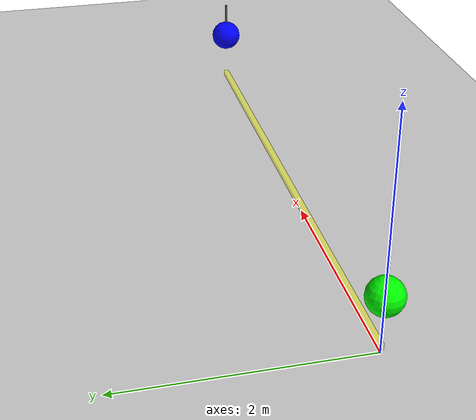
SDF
<?xml version="1.0" ?>
<!--
  Hello World Network Gazebo World File

  This world file creates a simple environment for the hello world
  network example with two nodes positioned 5 meters apart.
-->

<sdf version="1.8">
  <world name="hello_world_network">

    <!-- World physics configuration -->
    <physics name="1ms" type="ignored">
      <max_step_size>0.001</max_step_size>
      <real_time_factor>1.0</real_time_factor>
      <real_time_update_rate>1000</real_time_update_rate>
    </physics>

    <!-- Essential world plugins -->
    <plugin
      filename="gz-sim-physics-system"
      name="gz::sim::systems::Physics">
    </plugin>

    <plugin
      filename="gz-sim-user-commands-system"
      name="gz::sim::systems::UserCommands">
    </plugin>

    <plugin
      filename="gz-sim-scene-broadcaster-system"
      name="gz::sim::systems::SceneBroadcaster">
    </plugin>

    <!-- NS-3 Integration Plugin -->
    <plugin
      filename="libns3_gazebo_world.so"
      name="ns3_gazebo_world">
      <config_file>config/wifi_config.yaml</config_file>
    </plugin>

    <!-- World lighting -->
    <light type="directional" name="sun">
      <cast_shadows>true</cast_shadows>
      <pose>0 0 10 0 0 0</pose>
      <diffuse>0.8 0.8 0.8 1</diffuse>
      <specular>0.2 0.2 0.2 1</specular>
      <attenuation>
        <range>1000</range>
        <constant>0.9</constant>
        <linear>0.01</linear>
        <quadratic>0.001</quadratic>
      </attenuation>
      <direction>-0.5 0.1 -0.9</direction>
    </light>

    <!-- Ground plane -->
    <model name="ground_plane">
      <static>true</static>
      <link name="link">
        <collision name="collision">
          <geometry>
            <plane>
              <normal>0 0 1</normal>
              <size>100 100</size>
            </plane>
          </geometry>
        </collision>
        <visual name="visual">
          <geometry>
            <plane>
              <normal>0 0 1</normal>
              <size>100 100</size>
            </plane>
          </geometry>
          <material>
            <ambient>0.8 0.8 0.8 1</ambient>
            <diffuse>0.8 0.8 0.8 1</diffuse>
            <specular>0.8 0.8 0.8 1</specular>
          </material>
        </visual>
      </link>
    </model>

    <!-- WiFi Node 0 (Sender) -->
    <model name="wifi_node_0">
      <pose>0 0 0.5 0 0 0</pose>
      <static>true</static>

      <link name="base_link">
        <!-- Node visual representation -->
        <visual name="node_visual">
          <geometry>
            <sphere>
              <radius>0.15</radius>
            </sphere>
          </geometry>
          <material>
            <ambient>0.0 1.0 0.0 1</ambient>
            <diffuse>0.0 1.0 0.0 1</diffuse>
            <specular>0.1 0.1 0.1 1</specular>
          </material>
        </visual>

        <!-- Collision for selection -->
        <collision name="node_collision">
          <geometry>
            <sphere>
              <radius>0.15</radius>
            </sphere>
          </geometry>
        </collision>

        <!-- WiFi antenna visual -->
        <visual name="antenna_visual">
          <pose>0 0 0.2 0 0 0</pose>
          <geometry>
            <cylinder>
              <radius>0.01</radius>
              <length>0.3</length>
            </cylinder>
          </geometry>
          <material>
            <ambient>0.2 0.2 0.2 1</ambient>
            <diffuse>0.3 0.3 0.3 1</diffuse>
          </material>
        </visual>
      </link>

      <!-- NS-3 WiFi node plugin -->
      <plugin
        filename="libns3_gazebo_node.so"
        name="ns3_gazebo_node">
        <node_id>0</node_id>
        <node_type>wifi_station</node_type>
      </plugin>
    </model>

    <!-- WiFi Node 1 (Receiver) -->
    <model name="wifi_node_1">
      <pose>5 0 0.5 0 0 0</pose>
      <static>true</static>

      <link name="base_link">
        <!-- Node visual representation -->
        <visual name="node_visual">
          <geometry>
            <sphere>
              <radius>0.15</radius>
            </sphere>
          </geometry>
          <material>
            <ambient>0.0 0.0 1.0 1</ambient>
            <diffuse>0.0 0.0 1.0 1</diffuse>
            <specular>0.1 0.1 0.1 1</specular>
          </material>
        </visual>

        <!-- Collision for selection -->
        <collision name="node_collision">
          <geometry>
            <sphere>
              <radius>0.15</radius>
            </sphere>
          </geometry>
        </collision>

        <!-- WiFi antenna visual -->
        <visual name="antenna_visual">
          <pose>0 0 0.2 0 0 0</pose>
          <geometry>
            <cylinder>
              <radius>0.01</radius>
              <length>0.3</length>
            </cylinder>
          </geometry>
          <material>
            <ambient>0.2 0.2 0.2 1</ambient>
            <diffuse>0.3 0.3 0.3 1</diffuse>
          </material>
        </visual>
      </link>

      <!-- NS-3 WiFi node plugin -->
      <plugin
        filename="libns3_gazebo_node.so"
        name="ns3_gazebo_node">
        <node_id>1</node_id>
        <node_type>wifi_station</node_type>
      </plugin>
    </model>

    <!-- Distance measurement visual aid -->
    <model name="distance_marker">
      <pose>2.5 0 0.05 0 0 0</pose>
      <static>true</static>

      <link name="link">
        <visual name="line_visual">
          <geometry>
            <box>
              <size>5 0.05 0.05</size>
            </box>
          </geometry>
          <material>
            <ambient>1.0 1.0 0.0 0.5</ambient>
            <diffuse>1.0 1.0 0.0 0.5</diffuse>
          </material>
        </visual>
      </link>
    </model>

    <!-- Information display -->
    <gui fullscreen="0">
      <camera name="user_camera">
        <pose>8 -8 6 0 0.4 2.4</pose>
        <view_controller>orbit</view_controller>
        <projection_type>perspective</projection_type>
      </camera>

      <plugin filename="MinimalScene" name="3D View">
        <gz-gui>
          <title>3D View</title>
          <property type="bool" key="showTitleBar">false</property>
          <property type="string" key="state">docked</property>
        </gz-gui>
        <engine>ogre2</engine>
        <scene>scene</scene>
        <ambient_light>0.4 0.4 0.4</ambient_light>
        <background_color>0.8 0.8 0.8</background_color>
        <camera_pose>8 -8 6 0 0.4 2.4</camera_pose>
      </plugin>

      <plugin filename="WorldControl" name="World control">
        <gz-gui>
          <title>World control</title>
          <property type="bool" key="showTitleBar">false</property>
          <property type="bool" key="resizable">false</property>
          <property type="double" key="height">72</property>
          <property type="double" key="width">121</property>
          <property type="double" key="z">1</property>
          <property type="string" key="state">floating</property>
          <anchors target="3D View">
            <line own="left" target="left"/>
            <line own="bottom" target="bottom"/>
          </anchors>
        </gz-gui>
        <play_pause>true</play_pause>
        <step>true</step>
        <start_paused>true</start_paused>
      </plugin>

      <plugin filename="WorldStats" name="World stats">
        <gz-gui>
          <title>World stats</title>
          <property type="bool" key="showTitleBar">false</property>
          <property type="bool" key="resizable">false</property>
          <property type="double" key="height">110</property>
          <property type="double" key="width">290</property>
          <property type="double" key="z">1</property>
          <property type="string" key="state">floating</property>
          <anchors target="3D View">
            <line own="right" target="right"/>
            <line own="bottom" target="bottom"/>
          </anchors>
        </gz-gui>
        <sim_time>true</sim_time>
        <real_time>true</real_time>
        <real_time_factor>true</real_time_factor>
        <iterations>true</iterations>
      </plugin>
    </gui>

  </world>
</sdf>
